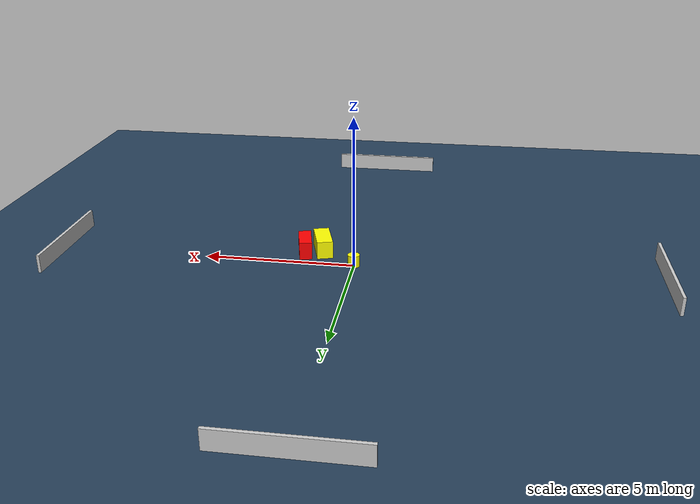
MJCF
<?xml version="1.0" ?>
<mujoco model="generated_environment">
  <option timestep="0.01" integrator="RK4" cone="elliptic"/>
  <default>
    <geom density="1"/>
  </default>
  <asset>
    <texture builtin="gradient" height="3072" name="skybox" rgb1="0.3 0.5 0.7" rgb2="0 0 0" type="skybox" width="512"/>
    <texture builtin="checker" height="300" name="groundplane" rgb1="0.2 0.3 0.4" rgb2="0.1 0.2 0.3" type="2d" width="300"/>
    <material name="groundplane" reflectance="0.2" texrepeat="5 5" texture="groundplane"/>
  </asset>
  <worldbody>
    <light dir="0 0 -1" directional="true" pos="0 0 1.5"/>
    <geom condim="3" friction="0.5 0.005 0.001" material="groundplane" name="floor" pos="0 0 0" size="0 0 0.05" type="plane"/>
    <body name="walls">
      <geom name="wall_1" condim="4" pos="-10.0 0.0 0.3" rgba="0.800000011920929 0.800000011920929 0.800000011920929 1.0" size="0.05 2.0 0.3" type="box"/>
      <geom name="wall_2" condim="4" pos="10.0 0.0 0.3" rgba="0.800000011920929 0.800000011920929 0.800000011920929 1.0" size="0.05 2.0 0.3" type="box"/>
      <geom name="wall_3" condim="4" pos="0.0 -10.0 0.3" rgba="0.800000011920929 0.800000011920929 0.800000011920929 1.0" size="2.0 0.05 0.3" type="box"/>
      <geom name="wall_4" condim="4" pos="0.0 10.0 0.3" rgba="0.800000011920929 0.800000011920929 0.800000011920929 1.0" size="2.0 0.05 0.3" type="box"/>
    </body>
    <body name="robot">
      <joint name="joint_x" type="slide" pos="0 0 0" axis="1 0 0"/>
      <joint name="joint_y" type="slide" pos="0 0 0" axis="0 1 0"/>
      <geom name="robot" type="cylinder" pos="0.0 0.0 0.2" size="0.2 0.2 0.0" mass="5.0" friction="1.0 0.005 0.0001" condim="4" rgba="1.0 1.0 0.0 1.0"/>
    </body>
    <body name="obstacle_1_movable">
      <geom name="obstacle_1_movable" condim="4" pos="1.2006414124871825 -0.9918590532571707 0.3" euler="0 0 286.58508636901314" friction="0.0 0.005 0.001" rgba="1.0 1.0 0.0 1.0" size="0.6083393698349657 0.26588065181337317 0.3" type="box" mass="0.1"/>
      <joint type="free"/>
    </body>
    <body name="obstacle_2_static">
      <geom name="obstacle_2_static" condim="4" pos="1.7727446608107589 -0.7535746913605977 0.3" euler="0 0 283.16029022446577" friction="0.0 0.005 0.001" rgba="1.0 0.0 0.0 1.0" size="0.526350263495645 0.2134011269194679 0.3" type="box"/>
    </body>
  </worldbody>
  <actuator>
    <motor name="actuator_x" joint="joint_x" gear="1" ctrlrange="-1 1"/>
    <motor name="actuator_y" joint="joint_y" gear="1" ctrlrange="-1 1"/>
  </actuator>
</mujoco>
